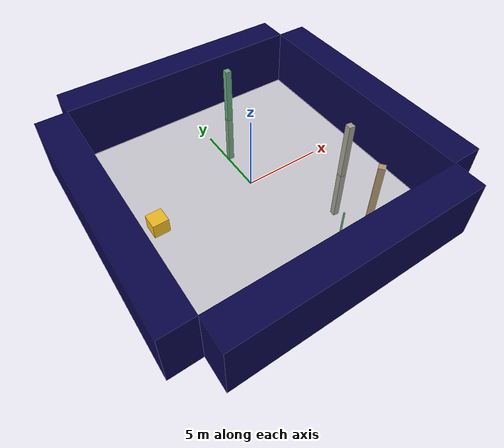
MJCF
<mujoco model="unnamed_model">
  <default>
    <default class="/" />
    <default class="border/" />
    <default class="border_1/" />
    <default class="border_2/" />
    <default class="border_3/" />
    <default class="light/" />
    <default class="agent/" />
    <default class="stone0/" />
    <default class="stone1/" />
    <default class="apple/" />
    <default class="apple_1/" />
  </default>
  <worldbody>
    <body name="border/">
      <body name="border/border" pos="0 9 2">
        <geom name="border/border_geom" class="border/" type="box" size="8.0 1.0 2.0" rgba="0.035 0.016 0.29 1.0" />
      </body>
    </body>
    <body name="border_1/">
      <body name="border_1/border" pos="0 -9 2">
        <geom name="border_1/border_geom" class="border_1/" type="box" size="8.0 1.0 2.0" rgba="0.035 0.016 0.29 1.0" />
      </body>
    </body>
    <body name="border_2/">
      <body name="border_2/border" pos="9 0 2">
        <geom name="border_2/border_geom" class="border_2/" type="box" size="1.0 8.0 2.0" rgba="0.035 0.016 0.29 1.0" />
      </body>
    </body>
    <body name="border_3/">
      <body name="border_3/border" pos="-9 0 2">
        <geom name="border_3/border_geom" class="border_3/" type="box" size="1.0 8.0 2.0" rgba="0.035 0.016 0.29 1.0" />
      </body>
    </body>
    <body name="light/">
      <body name="light/light" pos="0 0 15">
        <geom name="light/light_geom" class="light/" size="0.5" rgba="1.0 1.0 1.0 0.0" />
        <light name="light//unnamed_light_0" class="light/" />
      </body>
    </body>
    <body euler="0 0 270.64317441015811" name="agent/" pos="-6.4000000000000004 0 0.5">
      <joint name="agent/boxagent_freeJoint/" class="/" type="free" />
      <body name="agent/agent" pos="0 0 0" euler="0 0 0">
        <geom name="agent/boxagent_geom" class="agent/" type="box" size="0.5 0.5 0.5" rgba="0.949 0.7451 0.1333 1.0" euler="0 0 0" />
        <camera name="agent/boxagent_camera" class="agent/" fovy="90" pos="0 0 0.25" euler="-90 180 0" />
      </body>
    </body>
    <body name="stone0/">
      <body name="stone0/stone0" pos="2.5636000000000001 -5.7085999999999997 0.10000000000000001" euler="0 0 33.979299679845013">
        <geom name="stone0/stone_geom" class="stone0/" type="box" size="0.05 0.05 1.0" rgba="0.396078431372549 0.6705882352941176 0.48627450980392156 1.0" />
      </body>
    </body>
    <body name="stone1/">
      <body name="stone1/stone1" pos="5.2900999999999998 -2.5761000000000003 0.10000000000000001" euler="0 0 174.43682093148146">
        <geom name="stone1/stone_geom" class="stone1/" type="box" size="0.2 0.2 4.0" rgba="0.6470588235294118 0.6392156862745098 0.5686274509803921 1.0" />
      </body>
    </body>
    <body name="apple/">
      <body name="apple/apple" pos="4.4173499999999999 -6.0692000000000004 0.10000000000000001" euler="0 0 -142.50718794655702">
        <geom name="apple/apple_geom" class="apple/" type="box" size="0.2 0.2 4.0" rgba="0.6980392156862745 0.6 0.43137254901960786 1.0" />
      </body>
    </body>
    <body name="apple_1/">
      <body name="apple_1/apple" pos="2.22715 6.1341000000000001 0.10000000000000001" euler="0 0 175.3037895743941">
        <geom name="apple_1/apple_geom" class="apple_1/" type="box" size="0.2 0.2 4.0" rgba="0.396078431372549 0.6705882352941176 0.48627450980392156 1.0" />
      </body>
    </body>
    <geom name="base_plane" class="/" type="plane" size="8 8 0.10000000000000001" />
  </worldbody>
</mujoco>
